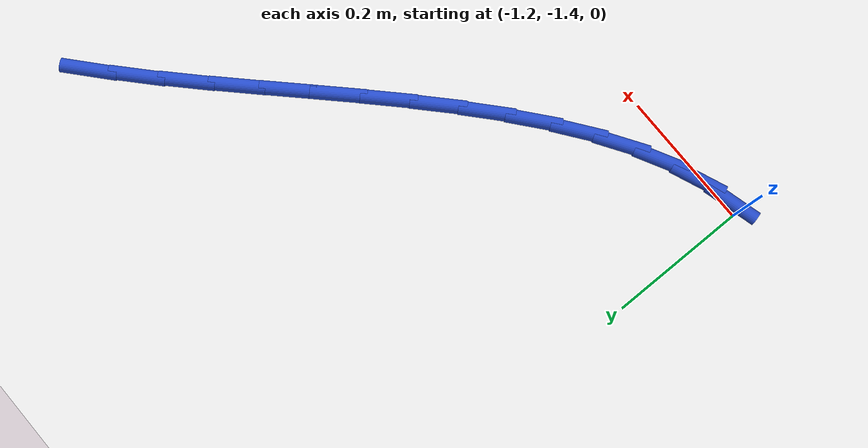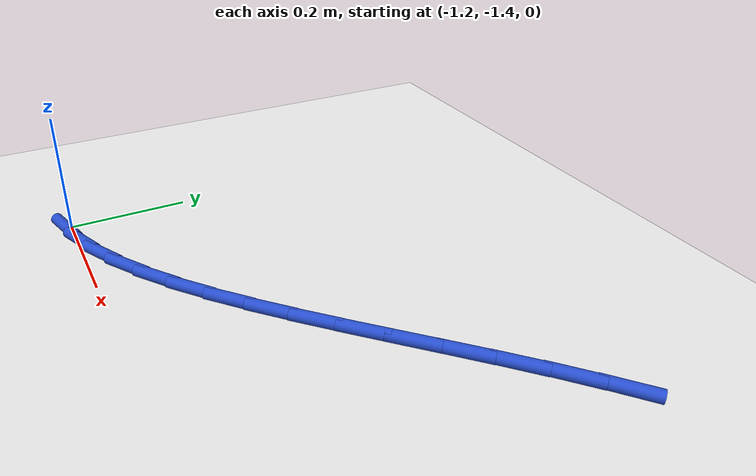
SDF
<sdf version="1.6">
 <world name="default">
  <model name="ground_plane">
   <static>1</static>
   <link name="link">
    <collision name="collision">
     <geometry><plane><normal>0 0 1</normal><size>100 100</size></plane></geometry>
     <surface><friction><ode><mu>100</mu><mu2>50</mu2></ode></friction></surface>
    </collision>
    <visual name="visual">
     <cast_shadows>0</cast_shadows>
     <geometry><plane><normal>0 0 1</normal><size>100 100</size></plane></geometry>
     <material>
      <script><uri>file://media/materials/scripts/gazebo.material</uri><name>Gazebo/WhiteGlow</name></script>
     </material>
    </visual>
   </link>
  </model>
  <model name="line">
   <link name="link_90">
    <pose>-1.1852708295161891 -1.4094889693557378 0.01 0 1.57 0.2657360951738897</pose>
    <collision name="collision">
     <geometry><cylinder><radius>0.01</radius><length>0.08</length></cylinder></geometry>
    </collision>
    <visual name="visual">
     <material>
      <script><name>Gazebo/Blue</name><uri>file://media/materials/scripts/gazebo.material</uri></script>
     </material>
     <geometry><cylinder><radius>0.01</radius><length>0.08</length></cylinder></geometry>
    </visual>
   </link>
   <link name="link_91">
    <pose>-1.1318779585890097 -1.3949568704316608 0.01 0 1.57 0.3890702702941189</pose>
    <collision name="collision">
     <geometry><cylinder><radius>0.01</radius><length>0.08</length></cylinder></geometry>
    </collision>
    <visual name="visual">
     <material>
      <script><name>Gazebo/Blue</name><uri>file://media/materials/scripts/gazebo.material</uri></script>
     </material>
     <geometry><cylinder><radius>0.01</radius><length>0.08</length></cylinder></geometry>
    </visual>
   </link>
   <link name="link_92">
    <pose>-1.0791802598711466 -1.3733524735405098 0.01 0 1.57 0.49191653048149997</pose>
    <collision name="collision">
     <geometry><cylinder><radius>0.01</radius><length>0.08</length></cylinder></geometry>
    </collision>
    <visual name="visual">
     <material>
      <script><name>Gazebo/Blue</name><uri>file://media/materials/scripts/gazebo.material</uri></script>
     </material>
     <geometry><cylinder><radius>0.01</radius><length>0.08</length></cylinder></geometry>
    </visual>
   </link>
   <link name="link_93">
    <pose>-1.0271100095000945 -1.3454505019010212 0.01 0 1.57 0.5755966672677608</pose>
    <collision name="collision">
     <geometry><cylinder><radius>0.01</radius><length>0.08</length></cylinder></geometry>
    </collision>
    <visual name="visual">
     <material>
      <script><name>Gazebo/Blue</name><uri>file://media/materials/scripts/gazebo.material</uri></script>
     </material>
     <geometry><cylinder><radius>0.01</radius><length>0.08</length></cylinder></geometry>
    </visual>
   </link>
   <link name="link_94">
    <pose>-0.9755994836133499 -1.3120256787319342 0.01 0 1.57 0.6423593079132947</pose>
    <collision name="collision">
     <geometry><cylinder><radius>0.01</radius><length>0.08</length></cylinder></geometry>
    </collision>
    <visual name="visual">
     <material>
      <script><name>Gazebo/Blue</name><uri>file://media/materials/scripts/gazebo.material</uri></script>
     </material>
     <geometry><cylinder><radius>0.01</radius><length>0.08</length></cylinder></geometry>
    </visual>
   </link>
   <link name="link_95">
    <pose>-0.9245809583484073 -1.273852727251985 0.01 0 1.57 0.6945572464703181</pose>
    <collision name="collision">
     <geometry><cylinder><radius>0.01</radius><length>0.08</length></cylinder></geometry>
    </collision>
    <visual name="visual">
     <material>
      <script><name>Gazebo/Blue</name><uri>file://media/materials/scripts/gazebo.material</uri></script>
     </material>
     <geometry><cylinder><radius>0.01</radius><length>0.08</length></cylinder></geometry>
    </visual>
   </link>
   <link name="link_96">
    <pose>-0.8739867098427607 -1.2317063706799114 0.01 0 1.57 0.734255133147477</pose>
    <collision name="collision">
     <geometry><cylinder><radius>0.01</radius><length>0.08</length></cylinder></geometry>
    </collision>
    <visual name="visual">
     <material>
      <script><name>Gazebo/Blue</name><uri>file://media/materials/scripts/gazebo.material</uri></script>
     </material>
     <geometry><cylinder><radius>0.01</radius><length>0.08</length></cylinder></geometry>
    </visual>
   </link>
   <link name="link_97">
    <pose>-0.823749014233907 -1.1863613322344513 0.01 0 1.57 0.7630940737915917</pose>
    <collision name="collision">
     <geometry><cylinder><radius>0.01</radius><length>0.08</length></cylinder></geometry>
    </collision>
    <visual name="visual">
     <material>
      <script><name>Gazebo/Blue</name><uri>file://media/materials/scripts/gazebo.material</uri></script>
     </material>
     <geometry><cylinder><radius>0.01</radius><length>0.08</length></cylinder></geometry>
    </visual>
   </link>
   <link name="link_98">
    <pose>-0.7738001476593409 -1.1385923351343428 0.01 0 1.57 0.7822762232276349</pose>
    <collision name="collision">
     <geometry><cylinder><radius>0.01</radius><length>0.08</length></cylinder></geometry>
    </collision>
    <visual name="visual">
     <material>
      <script><name>Gazebo/Blue</name><uri>file://media/materials/scripts/gazebo.material</uri></script>
     </material>
     <geometry><cylinder><radius>0.01</radius><length>0.08</length></cylinder></geometry>
    </visual>
   </link>
   <link name="link_99">
    <pose>-0.7240723862565572 -1.0891741025983221 0.01 0 1.57 0.7925912439157371</pose>
    <collision name="collision">
     <geometry><cylinder><radius>0.01</radius><length>0.08</length></cylinder></geometry>
    </collision>
    <visual name="visual">
     <material>
      <script><name>Gazebo/Blue</name><uri>file://media/materials/scripts/gazebo.material</uri></script>
     </material>
     <geometry><cylinder><radius>0.01</radius><length>0.08</length></cylinder></geometry>
    </visual>
   </link>
   <link name="link_100">
    <pose>-0.6744980061630503 -1.0388813578451268 0.01 0 1.57 0.7944467724172108</pose>
    <collision name="collision">
     <geometry><cylinder><radius>0.01</radius><length>0.08</length></cylinder></geometry>
    </collision>
    <visual name="visual">
     <material>
      <script><name>Gazebo/Blue</name><uri>file://media/materials/scripts/gazebo.material</uri></script>
     </material>
     <geometry><cylinder><radius>0.01</radius><length>0.08</length></cylinder></geometry>
    </visual>
   </link>
   <link name="link_101">
    <pose>-0.6250092835163171 -0.9884888240934956 0.01 0 1.57 0.7878864582773161</pose>
    <collision name="collision">
     <geometry><cylinder><radius>0.01</radius><length>0.08</length></cylinder></geometry>
    </collision>
    <visual name="visual">
     <material>
      <script><name>Gazebo/Blue</name><uri>file://media/materials/scripts/gazebo.material</uri></script>
     </material>
     <geometry><cylinder><radius>0.01</radius><length>0.08</length></cylinder></geometry>
    </visual>
   </link>
   <link name="link_102">
    <pose>-0.5755384944538517 -0.9387712245621649 0.01 0 1.57 0.772589208697464</pose>
    <collision name="collision">
     <geometry><cylinder><radius>0.01</radius><length>0.08</length></cylinder></geometry>
    </collision>
    <visual name="visual">
     <material>
      <script><name>Gazebo/Blue</name><uri>file://media/materials/scripts/gazebo.material</uri></script>
     </material>
     <geometry><cylinder><radius>0.01</radius><length>0.08</length></cylinder></geometry>
    </visual>
   </link>
   <link name="link_103">
    <pose>-0.5260179151131495 -0.8905032824698731 0.01 0 1.57 0.7482622432027629</pose>
    <collision name="collision">
     <geometry><cylinder><radius>0.01</radius><length>0.08</length></cylinder></geometry>
    </collision>
    <visual name="visual">
     <material>
      <script><name>Gazebo/Blue</name><uri>file://media/materials/scripts/gazebo.material</uri></script>
     </material>
     <geometry><cylinder><radius>0.01</radius><length>0.08</length></cylinder></geometry>
    </visual>
   </link>
   <link name="link_104">
    <pose>-0.4763902797455643 -0.8444311795468821 0.01 0 1.57 0.7249469077846985</pose>
    <collision name="collision">
     <geometry><cylinder><radius>0.01</radius><length>0.08</length></cylinder></geometry>
    </collision>
    <visual name="visual">
     <material>
      <script><name>Gazebo/Blue</name><uri>file://media/materials/scripts/gazebo.material</uri></script>
     </material>
     <geometry><cylinder><radius>0.01</radius><length>0.08</length></cylinder></geometry>
    </visual>
   </link>
  </model>
 </world>
</sdf>
